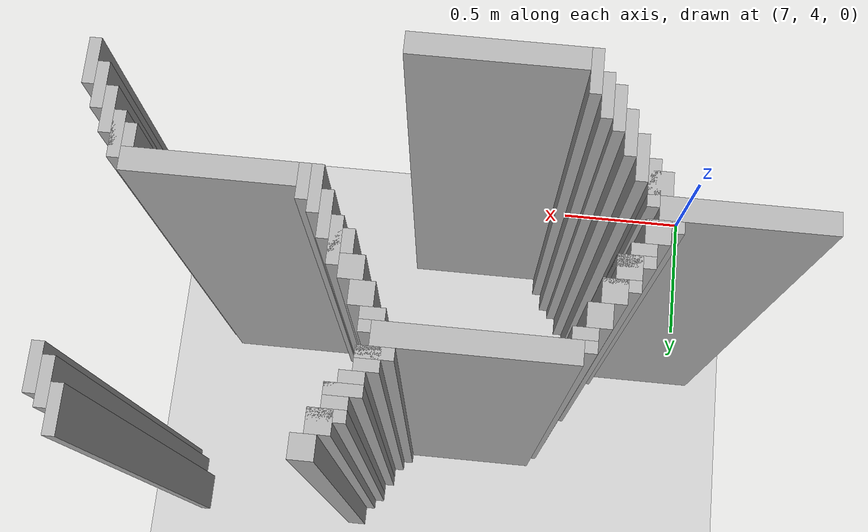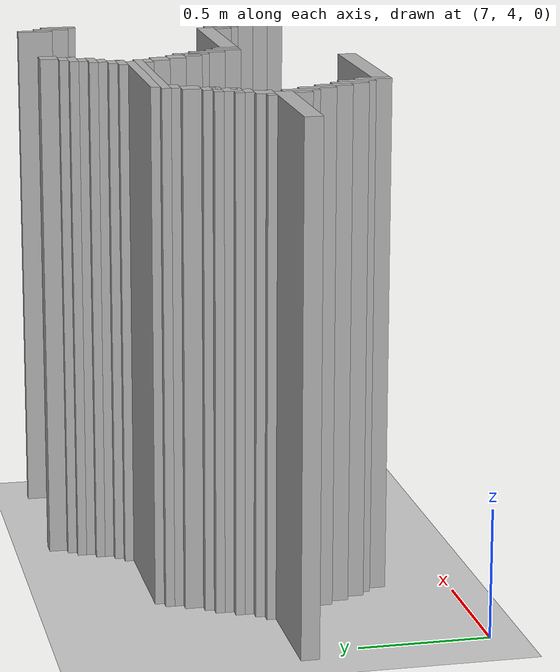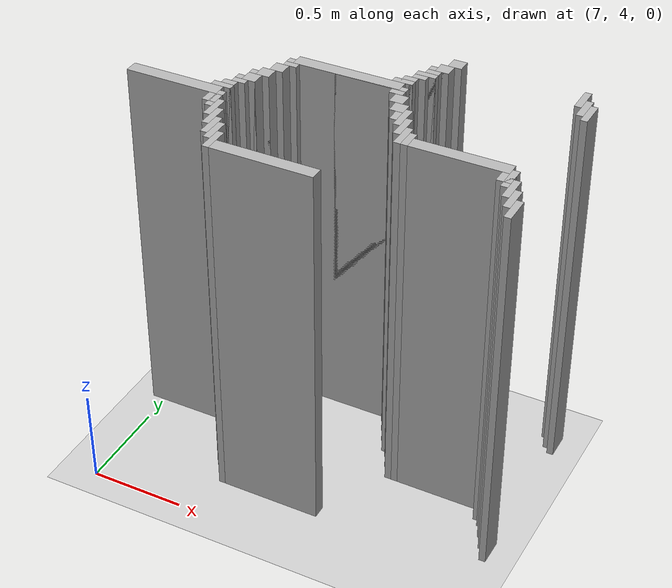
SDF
<sdf version="1.6">
 <world name="slam_world">
  <model name="ground_plane">
   <static>true</static>
   <link name="link">
    <collision name="collision">
     <geometry><plane><normal>0 0 1</normal><size>100 100</size></plane></geometry>
    </collision>
    <visual name="visual">
     <geometry><plane><normal>0 0 1</normal><size>100 100</size></plane></geometry>
     <material>
      <ambient>0.8 0.8 0.8 1</ambient>
      <diffuse>0.8 0.8 0.8 1</diffuse>
      <specular>0.8 0.8 0.8 1</specular>
     </material>
    </visual>
   </link>
  </model>
  <model name="wall_3913">
   <static>true</static>
   <pose>8.2830626450116 5.4292343387471 1.0 0 0 0</pose>
   <link name="link">
    <collision name="collision">
     <geometry><box><size>0.06960556844547564 0.06960556844547564 2.0</size></box></geometry>
    </collision>
    <visual name="visual">
     <geometry><box><size>0.06960556844547564 0.06960556844547564 2.0</size></box></geometry>
     <material><ambient>0.5 0.5 0.5 1</ambient><diffuse>0.7 0.7 0.7 1</diffuse></material>
    </visual>
   </link>
  </model>
  <model name="wall_3914">
   <static>true</static>
   <pose>8.92691415313225 5.3944315545243615 1.0 0 0 0</pose>
   <link name="link">
    <collision name="collision">
     <geometry><box><size>0.03480278422273782 0.13921113689095127 2.0</size></box></geometry>
    </collision>
    <visual name="visual">
     <geometry><box><size>0.03480278422273782 0.13921113689095127 2.0</size></box></geometry>
     <material><ambient>0.5 0.5 0.5 1</ambient><diffuse>0.7 0.7 0.7 1</diffuse></material>
    </visual>
   </link>
  </model>
  <model name="wall_3926">
   <static>true</static>
   <pose>8.248259860788863 5.359628770301624 1.0 0 0 0</pose>
   <link name="link">
    <collision name="collision">
     <geometry><box><size>0.06960556844547564 0.06960556844547564 2.0</size></box></geometry>
    </collision>
    <visual name="visual">
     <geometry><box><size>0.06960556844547564 0.06960556844547564 2.0</size></box></geometry>
     <material><ambient>0.5 0.5 0.5 1</ambient><diffuse>0.7 0.7 0.7 1</diffuse></material>
    </visual>
   </link>
  </model>
  <model name="wall_3927">
   <static>true</static>
   <pose>8.961716937354987 5.324825986078886 1.0 0 0 0</pose>
   <link name="link">
    <collision name="collision">
     <geometry><box><size>0.03480278422273782 0.13921113689095127 2.0</size></box></geometry>
    </collision>
    <visual name="visual">
     <geometry><box><size>0.03480278422273782 0.13921113689095127 2.0</size></box></geometry>
     <material><ambient>0.5 0.5 0.5 1</ambient><diffuse>0.7 0.7 0.7 1</diffuse></material>
    </visual>
   </link>
  </model>
  <model name="wall_3939">
   <static>true</static>
   <pose>8.230858468677495 5.342227378190255 1.0 0 0 0</pose>
   <link name="link">
    <collision name="collision">
     <geometry><box><size>0.10440835266821345 0.03480278422273782 2.0</size></box></geometry>
    </collision>
    <visual name="visual">
     <geometry><box><size>0.10440835266821345 0.03480278422273782 2.0</size></box></geometry>
     <material><ambient>0.5 0.5 0.5 1</ambient><diffuse>0.7 0.7 0.7 1</diffuse></material>
    </visual>
   </link>
  </model>
  <model name="wall_3940">
   <static>true</static>
   <pose>8.996519721577727 5.290023201856148 1.0 0 0 0</pose>
   <link name="link">
    <collision name="collision">
     <geometry><box><size>0.03480278422273782 0.13921113689095127 2.0</size></box></geometry>
    </collision>
    <visual name="visual">
     <geometry><box><size>0.03480278422273782 0.13921113689095127 2.0</size></box></geometry>
     <material><ambient>0.5 0.5 0.5 1</ambient><diffuse>0.7 0.7 0.7 1</diffuse></material>
    </visual>
   </link>
  </model>
  <model name="wall_3950">
   <static>true</static>
   <pose>8.213457076566124 5.290023201856148 1.0 0 0 0</pose>
   <link name="link">
    <collision name="collision">
     <geometry><box><size>0.06960556844547564 0.06960556844547564 2.0</size></box></geometry>
    </collision>
    <visual name="visual">
     <geometry><box><size>0.06960556844547564 0.06960556844547564 2.0</size></box></geometry>
     <material><ambient>0.5 0.5 0.5 1</ambient><diffuse>0.7 0.7 0.7 1</diffuse></material>
    </visual>
   </link>
  </model>
  <model name="wall_3960">
   <static>true</static>
   <pose>8.196055684454755 5.27262180974478 1.0 0 0 0</pose>
   <link name="link">
    <collision name="collision">
     <geometry><box><size>0.10440835266821345 0.03480278422273782 2.0</size></box></geometry>
    </collision>
    <visual name="visual">
     <geometry><box><size>0.10440835266821345 0.03480278422273782 2.0</size></box></geometry>
     <material><ambient>0.5 0.5 0.5 1</ambient><diffuse>0.7 0.7 0.7 1</diffuse></material>
    </visual>
   </link>
  </model>
  <model name="wall_3970">
   <static>true</static>
   <pose>8.178654292343387 5.237819025522041 1.0 0 0 0</pose>
   <link name="link">
    <collision name="collision">
     <geometry><box><size>0.06960556844547564 0.03480278422273782 2.0</size></box></geometry>
    </collision>
    <visual name="visual">
     <geometry><box><size>0.06960556844547564 0.03480278422273782 2.0</size></box></geometry>
     <material><ambient>0.5 0.5 0.5 1</ambient><diffuse>0.7 0.7 0.7 1</diffuse></material>
    </visual>
   </link>
  </model>
  <model name="wall_3980">
   <static>true</static>
   <pose>8.14385150812065 5.185614849187935 1.0 0 0 0</pose>
   <link name="link">
    <collision name="collision">
     <geometry><box><size>0.06960556844547564 0.06960556844547564 2.0</size></box></geometry>
    </collision>
    <visual name="visual">
     <geometry><box><size>0.06960556844547564 0.06960556844547564 2.0</size></box></geometry>
     <material><ambient>0.5 0.5 0.5 1</ambient><diffuse>0.7 0.7 0.7 1</diffuse></material>
    </visual>
   </link>
  </model>
  <model name="wall_3993">
   <static>true</static>
   <pose>8.12645011600928 5.168213457076566 1.0 0 0 0</pose>
   <link name="link">
    <collision name="collision">
     <geometry><box><size>0.10440835266821345 0.03480278422273782 2.0</size></box></geometry>
    </collision>
    <visual name="visual">
     <geometry><box><size>0.10440835266821345 0.03480278422273782 2.0</size></box></geometry>
     <material><ambient>0.5 0.5 0.5 1</ambient><diffuse>0.7 0.7 0.7 1</diffuse></material>
    </visual>
   </link>
  </model>
  <model name="wall_4005">
   <static>true</static>
   <pose>7.865429234338746 5.1160092807424595 1.0 0 0 0</pose>
   <link name="link">
    <collision name="collision">
     <geometry><box><size>0.5568445475638051 0.06960556844547564 2.0</size></box></geometry>
    </collision>
    <visual name="visual">
     <geometry><box><size>0.5568445475638051 0.06960556844547564 2.0</size></box></geometry>
     <material><ambient>0.5 0.5 0.5 1</ambient><diffuse>0.7 0.7 0.7 1</diffuse></material>
    </visual>
   </link>
  </model>
  <model name="wall_4016">
   <static>true</static>
   <pose>7.865429234338746 5.09860788863109 1.0 0 0 0</pose>
   <link name="link">
    <collision name="collision">
     <geometry><box><size>0.6264501160092807 0.03480278422273782 2.0</size></box></geometry>
    </collision>
    <visual name="visual">
     <geometry><box><size>0.6264501160092807 0.03480278422273782 2.0</size></box></geometry>
     <material><ambient>0.5 0.5 0.5 1</ambient><diffuse>0.7 0.7 0.7 1</diffuse></material>
    </visual>
   </link>
  </model>
  <model name="wall_4032">
   <static>true</static>
   <pose>7.587006960556844 5.0638051044083525 1.0 0 0 0</pose>
   <link name="link">
    <collision name="collision">
     <geometry><box><size>0.06960556844547564 0.03480278422273782 2.0</size></box></geometry>
    </collision>
    <visual name="visual">
     <geometry><box><size>0.06960556844547564 0.03480278422273782 2.0</size></box></geometry>
     <material><ambient>0.5 0.5 0.5 1</ambient><diffuse>0.7 0.7 0.7 1</diffuse></material>
    </visual>
   </link>
  </model>
  <model name="wall_4033">
   <static>true</static>
   <pose>8.14385150812065 5.0638051044083525 1.0 0 0 0</pose>
   <link name="link">
    <collision name="collision">
     <geometry><box><size>0.06960556844547564 0.03480278422273782 2.0</size></box></geometry>
    </collision>
    <visual name="visual">
     <geometry><box><size>0.06960556844547564 0.03480278422273782 2.0</size></box></geometry>
     <material><ambient>0.5 0.5 0.5 1</ambient><diffuse>0.7 0.7 0.7 1</diffuse></material>
    </visual>
   </link>
  </model>
  <model name="wall_4047">
   <static>true</static>
   <pose>7.552204176334106 5.0116009280742455 1.0 0 0 0</pose>
   <link name="link">
    <collision name="collision">
     <geometry><box><size>0.06960556844547564 0.06960556844547564 2.0</size></box></geometry>
    </collision>
    <visual name="visual">
     <geometry><box><size>0.06960556844547564 0.06960556844547564 2.0</size></box></geometry>
     <material><ambient>0.5 0.5 0.5 1</ambient><diffuse>0.7 0.7 0.7 1</diffuse></material>
    </visual>
   </link>
  </model>
  <model name="wall_4048">
   <static>true</static>
   <pose>8.178654292343387 5.0116009280742455 1.0 0 0 0</pose>
   <link name="link">
    <collision name="collision">
     <geometry><box><size>0.06960556844547564 0.06960556844547564 2.0</size></box></geometry>
    </collision>
    <visual name="visual">
     <geometry><box><size>0.06960556844547564 0.06960556844547564 2.0</size></box></geometry>
     <material><ambient>0.5 0.5 0.5 1</ambient><diffuse>0.7 0.7 0.7 1</diffuse></material>
    </visual>
   </link>
  </model>
  <model name="wall_4062">
   <static>true</static>
   <pose>7.517401392111369 4.94199535962877 1.0 0 0 0</pose>
   <link name="link">
    <collision name="collision">
     <geometry><box><size>0.06960556844547564 0.06960556844547564 2.0</size></box></geometry>
    </collision>
    <visual name="visual">
     <geometry><box><size>0.06960556844547564 0.06960556844547564 2.0</size></box></geometry>
     <material><ambient>0.5 0.5 0.5 1</ambient><diffuse>0.7 0.7 0.7 1</diffuse></material>
    </visual>
   </link>
  </model>
  <model name="wall_4063">
   <static>true</static>
   <pose>8.213457076566124 4.94199535962877 1.0 0 0 0</pose>
   <link name="link">
    <collision name="collision">
     <geometry><box><size>0.06960556844547564 0.06960556844547564 2.0</size></box></geometry>
    </collision>
    <visual name="visual">
     <geometry><box><size>0.06960556844547564 0.06960556844547564 2.0</size></box></geometry>
     <material><ambient>0.5 0.5 0.5 1</ambient><diffuse>0.7 0.7 0.7 1</diffuse></material>
    </visual>
   </link>
  </model>
  <model name="wall_4077">
   <static>true</static>
   <pose>7.5 4.924593967517401 1.0 0 0 0</pose>
   <link name="link">
    <collision name="collision">
     <geometry><box><size>0.10440835266821345 0.03480278422273782 2.0</size></box></geometry>
    </collision>
    <visual name="visual">
     <geometry><box><size>0.10440835266821345 0.03480278422273782 2.0</size></box></geometry>
     <material><ambient>0.5 0.5 0.5 1</ambient><diffuse>0.7 0.7 0.7 1</diffuse></material>
    </visual>
   </link>
  </model>
  <model name="wall_4078">
   <static>true</static>
   <pose>8.265661252900232 4.872389791183294 1.0 0 0 0</pose>
   <link name="link">
    <collision name="collision">
     <geometry><box><size>0.03480278422273782 0.13921113689095127 2.0</size></box></geometry>
    </collision>
    <visual name="visual">
     <geometry><box><size>0.03480278422273782 0.13921113689095127 2.0</size></box></geometry>
     <material><ambient>0.5 0.5 0.5 1</ambient><diffuse>0.7 0.7 0.7 1</diffuse></material>
    </visual>
   </link>
  </model>
  <model name="wall_4091">
   <static>true</static>
   <pose>7.48259860788863 4.872389791183294 1.0 0 0 0</pose>
   <link name="link">
    <collision name="collision">
     <geometry><box><size>0.06960556844547564 0.06960556844547564 2.0</size></box></geometry>
    </collision>
    <visual name="visual">
     <geometry><box><size>0.06960556844547564 0.06960556844547564 2.0</size></box></geometry>
     <material><ambient>0.5 0.5 0.5 1</ambient><diffuse>0.7 0.7 0.7 1</diffuse></material>
    </visual>
   </link>
  </model>
  <model name="wall_4092">
   <static>true</static>
   <pose>8.248259860788863 4.872389791183294 1.0 0 0 0</pose>
   <link name="link">
    <collision name="collision">
     <geometry><box><size>0.06960556844547564 0.06960556844547564 2.0</size></box></geometry>
    </collision>
    <visual name="visual">
     <geometry><box><size>0.06960556844547564 0.06960556844547564 2.0</size></box></geometry>
     <material><ambient>0.5 0.5 0.5 1</ambient><diffuse>0.7 0.7 0.7 1</diffuse></material>
    </visual>
   </link>
  </model>
  <model name="wall_4105">
   <static>true</static>
   <pose>7.465197215777262 4.854988399071925 1.0 0 0 0</pose>
   <link name="link">
    <collision name="collision">
     <geometry><box><size>0.10440835266821345 0.03480278422273782 2.0</size></box></geometry>
    </collision>
    <visual name="visual">
     <geometry><box><size>0.10440835266821345 0.03480278422273782 2.0</size></box></geometry>
     <material><ambient>0.5 0.5 0.5 1</ambient><diffuse>0.7 0.7 0.7 1</diffuse></material>
    </visual>
   </link>
  </model>
  <model name="wall_4106">
   <static>true</static>
   <pose>8.30046403712297 4.802784222737819 1.0 0 0 0</pose>
   <link name="link">
    <collision name="collision">
     <geometry><box><size>0.03480278422273782 0.13921113689095127 2.0</size></box></geometry>
    </collision>
    <visual name="visual">
     <geometry><box><size>0.03480278422273782 0.13921113689095127 2.0</size></box></geometry>
     <material><ambient>0.5 0.5 0.5 1</ambient><diffuse>0.7 0.7 0.7 1</diffuse></material>
    </visual>
   </link>
  </model>
  <model name="wall_4115">
   <static>true</static>
   <pose>7.447795823665893 4.820185614849188 1.0 0 0 0</pose>
   <link name="link">
    <collision name="collision">
     <geometry><box><size>0.06960556844547564 0.03480278422273782 2.0</size></box></geometry>
    </collision>
    <visual name="visual">
     <geometry><box><size>0.06960556844547564 0.03480278422273782 2.0</size></box></geometry>
     <material><ambient>0.5 0.5 0.5 1</ambient><diffuse>0.7 0.7 0.7 1</diffuse></material>
    </visual>
   </link>
  </model>
  <model name="wall_4128">
   <static>true</static>
   <pose>7.412993039443156 4.767981438515081 1.0 0 0 0</pose>
   <link name="link">
    <collision name="collision">
     <geometry><box><size>0.06960556844547564 0.06960556844547564 2.0</size></box></geometry>
    </collision>
    <visual name="visual">
     <geometry><box><size>0.06960556844547564 0.06960556844547564 2.0</size></box></geometry>
     <material><ambient>0.5 0.5 0.5 1</ambient><diffuse>0.7 0.7 0.7 1</diffuse></material>
    </visual>
   </link>
  </model>
  <model name="wall_4129">
   <static>true</static>
   <pose>8.335266821345707 4.7331786542923435 1.0 0 0 0</pose>
   <link name="link">
    <collision name="collision">
     <geometry><box><size>0.03480278422273782 0.13921113689095127 2.0</size></box></geometry>
    </collision>
    <visual name="visual">
     <geometry><box><size>0.03480278422273782 0.13921113689095127 2.0</size></box></geometry>
     <material><ambient>0.5 0.5 0.5 1</ambient><diffuse>0.7 0.7 0.7 1</diffuse></material>
    </visual>
   </link>
  </model>
  <model name="wall_4142">
   <static>true</static>
   <pose>7.395591647331786 4.750580046403712 1.0 0 0 0</pose>
   <link name="link">
    <collision name="collision">
     <geometry><box><size>0.10440835266821345 0.03480278422273782 2.0</size></box></geometry>
    </collision>
    <visual name="visual">
     <geometry><box><size>0.10440835266821345 0.03480278422273782 2.0</size></box></geometry>
     <material><ambient>0.5 0.5 0.5 1</ambient><diffuse>0.7 0.7 0.7 1</diffuse></material>
    </visual>
   </link>
  </model>
  <model name="wall_4143">
   <static>true</static>
   <pose>8.370069605568444 4.715777262180974 1.0 0 0 0</pose>
   <link name="link">
    <collision name="collision">
     <geometry><box><size>0.03480278422273782 0.10440835266821345 2.0</size></box></geometry>
    </collision>
    <visual name="visual">
     <geometry><box><size>0.03480278422273782 0.10440835266821345 2.0</size></box></geometry>
     <material><ambient>0.5 0.5 0.5 1</ambient><diffuse>0.7 0.7 0.7 1</diffuse></material>
    </visual>
   </link>
  </model>
  <model name="wall_4152">
   <static>true</static>
   <pose>7.16937354988399 4.698375870069605 1.0 0 0 0</pose>
   <link name="link">
    <collision name="collision">
     <geometry><box><size>0.4872389791183295 0.06960556844547564 2.0</size></box></geometry>
    </collision>
    <visual name="visual">
     <geometry><box><size>0.4872389791183295 0.06960556844547564 2.0</size></box></geometry>
     <material><ambient>0.5 0.5 0.5 1</ambient><diffuse>0.7 0.7 0.7 1</diffuse></material>
    </visual>
   </link>
  </model>
  <model name="wall_4153">
   <static>true</static>
   <pose>8.631090487238978 4.698375870069605 1.0 0 0 0</pose>
   <link name="link">
    <collision name="collision">
     <geometry><box><size>0.4872389791183295 0.06960556844547564 2.0</size></box></geometry>
    </collision>
    <visual name="visual">
     <geometry><box><size>0.4872389791183295 0.06960556844547564 2.0</size></box></geometry>
     <material><ambient>0.5 0.5 0.5 1</ambient><diffuse>0.7 0.7 0.7 1</diffuse></material>
    </visual>
   </link>
  </model>
  <model name="wall_4166">
   <static>true</static>
   <pose>7.430394431554524 4.6287703016241295 1.0 0 0 0</pose>
   <link name="link">
    <collision name="collision">
     <geometry><box><size>0.03480278422273782 0.13921113689095127 2.0</size></box></geometry>
    </collision>
    <visual name="visual">
     <geometry><box><size>0.03480278422273782 0.13921113689095127 2.0</size></box></geometry>
     <material><ambient>0.5 0.5 0.5 1</ambient><diffuse>0.7 0.7 0.7 1</diffuse></material>
    </visual>
   </link>
  </model>
  <model name="wall_4167">
   <static>true</static>
   <pose>8.892111368909513 4.6287703016241295 1.0 0 0 0</pose>
   <link name="link">
    <collision name="collision">
     <geometry><box><size>0.03480278422273782 0.13921113689095127 2.0</size></box></geometry>
    </collision>
    <visual name="visual">
     <geometry><box><size>0.03480278422273782 0.13921113689095127 2.0</size></box></geometry>
     <material><ambient>0.5 0.5 0.5 1</ambient><diffuse>0.7 0.7 0.7 1</diffuse></material>
    </visual>
   </link>
  </model>
  <model name="wall_4180">
   <static>true</static>
   <pose>7.412993039443156 4.6287703016241295 1.0 0 0 0</pose>
   <link name="link">
    <collision name="collision">
     <geometry><box><size>0.06960556844547564 0.06960556844547564 2.0</size></box></geometry>
    </collision>
    <visual name="visual">
     <geometry><box><size>0.06960556844547564 0.06960556844547564 2.0</size></box></geometry>
     <material><ambient>0.5 0.5 0.5 1</ambient><diffuse>0.7 0.7 0.7 1</diffuse></material>
    </visual>
   </link>
  </model>
  <model name="wall_4181">
   <static>true</static>
   <pose>8.874709976798144 4.6287703016241295 1.0 0 0 0</pose>
   <link name="link">
    <collision name="collision">
     <geometry><box><size>0.06960556844547564 0.06960556844547564 2.0</size></box></geometry>
    </collision>
    <visual name="visual">
     <geometry><box><size>0.06960556844547564 0.06960556844547564 2.0</size></box></geometry>
     <material><ambient>0.5 0.5 0.5 1</ambient><diffuse>0.7 0.7 0.7 1</diffuse></material>
    </visual>
   </link>
  </model>
  <model name="wall_4195">
   <static>true</static>
   <pose>7.465197215777262 4.559164733178654 1.0 0 0 0</pose>
   <link name="link">
    <collision name="collision">
     <geometry><box><size>0.03480278422273782 0.13921113689095127 2.0</size></box></geometry>
    </collision>
    <visual name="visual">
     <geometry><box><size>0.03480278422273782 0.13921113689095127 2.0</size></box></geometry>
     <material><ambient>0.5 0.5 0.5 1</ambient><diffuse>0.7 0.7 0.7 1</diffuse></material>
    </visual>
   </link>
  </model>
  <model name="wall_4196">
   <static>true</static>
   <pose>8.92691415313225 4.559164733178654 1.0 0 0 0</pose>
   <link name="link">
    <collision name="collision">
     <geometry><box><size>0.03480278422273782 0.13921113689095127 2.0</size></box></geometry>
    </collision>
    <visual name="visual">
     <geometry><box><size>0.03480278422273782 0.13921113689095127 2.0</size></box></geometry>
     <material><ambient>0.5 0.5 0.5 1</ambient><diffuse>0.7 0.7 0.7 1</diffuse></material>
    </visual>
   </link>
  </model>
  <model name="wall_4217">
   <static>true</static>
   <pose>7.5 4.489559164733178 1.0 0 0 0</pose>
   <link name="link">
    <collision name="collision">
     <geometry><box><size>0.03480278422273782 0.13921113689095127 2.0</size></box></geometry>
    </collision>
    <visual name="visual">
     <geometry><box><size>0.03480278422273782 0.13921113689095127 2.0</size></box></geometry>
     <material><ambient>0.5 0.5 0.5 1</ambient><diffuse>0.7 0.7 0.7 1</diffuse></material>
    </visual>
   </link>
  </model>
  <model name="wall_4218">
   <static>true</static>
   <pose>8.961716937354987 4.489559164733178 1.0 0 0 0</pose>
   <link name="link">
    <collision name="collision">
     <geometry><box><size>0.03480278422273782 0.13921113689095127 2.0</size></box></geometry>
    </collision>
    <visual name="visual">
     <geometry><box><size>0.03480278422273782 0.13921113689095127 2.0</size></box></geometry>
     <material><ambient>0.5 0.5 0.5 1</ambient><diffuse>0.7 0.7 0.7 1</diffuse></material>
    </visual>
   </link>
  </model>
  <model name="wall_4232">
   <static>true</static>
   <pose>7.534802784222737 4.419953596287703 1.0 0 0 0</pose>
   <link name="link">
    <collision name="collision">
     <geometry><box><size>0.03480278422273782 0.13921113689095127 2.0</size></box></geometry>
    </collision>
    <visual name="visual">
     <geometry><box><size>0.03480278422273782 0.13921113689095127 2.0</size></box></geometry>
     <material><ambient>0.5 0.5 0.5 1</ambient><diffuse>0.7 0.7 0.7 1</diffuse></material>
    </visual>
   </link>
  </model>
  <model name="wall_4233">
   <static>true</static>
   <pose>8.996519721577727 4.419953596287703 1.0 0 0 0</pose>
   <link name="link">
    <collision name="collision">
     <geometry><box><size>0.03480278422273782 0.13921113689095127 2.0</size></box></geometry>
    </collision>
    <visual name="visual">
     <geometry><box><size>0.03480278422273782 0.13921113689095127 2.0</size></box></geometry>
     <material><ambient>0.5 0.5 0.5 1</ambient><diffuse>0.7 0.7 0.7 1</diffuse></material>
    </visual>
   </link>
  </model>
  <model name="wall_4247">
   <static>true</static>
   <pose>7.569605568445476 4.385150812064965 1.0 0 0 0</pose>
   <link name="link">
    <collision name="collision">
     <geometry><box><size>0.03480278422273782 0.13921113689095127 2.0</size></box></geometry>
    </collision>
    <visual name="visual">
     <geometry><box><size>0.03480278422273782 0.13921113689095127 2.0</size></box></geometry>
     <material><ambient>0.5 0.5 0.5 1</ambient><diffuse>0.7 0.7 0.7 1</diffuse></material>
    </visual>
   </link>
  </model>
  <model name="wall_4268">
   <static>true</static>
   <pose>7.604408352668213 4.315545243619489 1.0 0 0 0</pose>
   <link name="link">
    <collision name="collision">
     <geometry><box><size>0.03480278422273782 0.13921113689095127 2.0</size></box></geometry>
    </collision>
    <visual name="visual">
     <geometry><box><size>0.03480278422273782 0.13921113689095127 2.0</size></box></geometry>
     <material><ambient>0.5 0.5 0.5 1</ambient><diffuse>0.7 0.7 0.7 1</diffuse></material>
    </visual>
   </link>
  </model>
  <model name="wall_4291">
   <static>true</static>
   <pose>7.882830626450116 4.280742459396752 1.0 0 0 0</pose>
   <link name="link">
    <collision name="collision">
     <geometry><box><size>0.5220417633410672 0.06960556844547564 2.0</size></box></geometry>
    </collision>
    <visual name="visual">
     <geometry><box><size>0.5220417633410672 0.06960556844547564 2.0</size></box></geometry>
     <material><ambient>0.5 0.5 0.5 1</ambient><diffuse>0.7 0.7 0.7 1</diffuse></material>
    </visual>
   </link>
  </model>
 </world>
</sdf>
